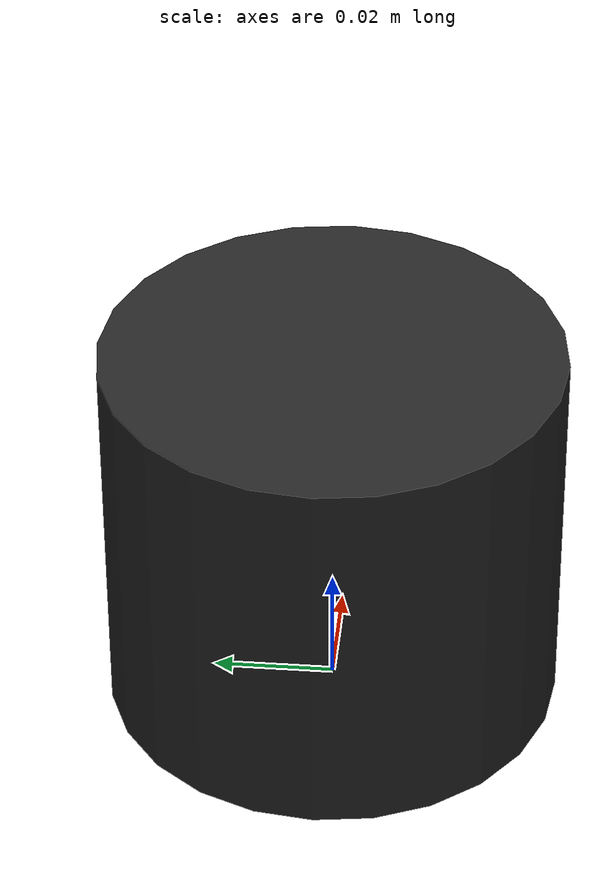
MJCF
<mujoco model="ft_mount">
  <worldbody>
    <body name="wrist_ft_body">
      <inertial pos="0 0 0.0325" mass="0.133396" diaginertia="9.386e-5 9.386e-5 9.379e-5"/>
      <geom name="wrist_ft_geom" type="cylinder" pos="0 0 0.0325" size="0.0375 0.0325"
            contype="0" conaffinity="0" rgba="0.15 0.15 0.15 1"/>
      <site name="wrist_ft_site" pos="0 0 0.0325" quat="0 0 0 1" size="0.012"/>
      <!-- Where the gripper attaches; carries no geometry of its own. -->
      <site name="wrist_ft_mount" pos="0 0 0.065" size="0.001" rgba="0 0 0 0"/>
    </body>
  </worldbody>

  <sensor>
    <force name="wrist_ft_force" site="wrist_ft_site"/>
    <torque name="wrist_ft_torque" site="wrist_ft_site"/>
  </sensor>
</mujoco>
